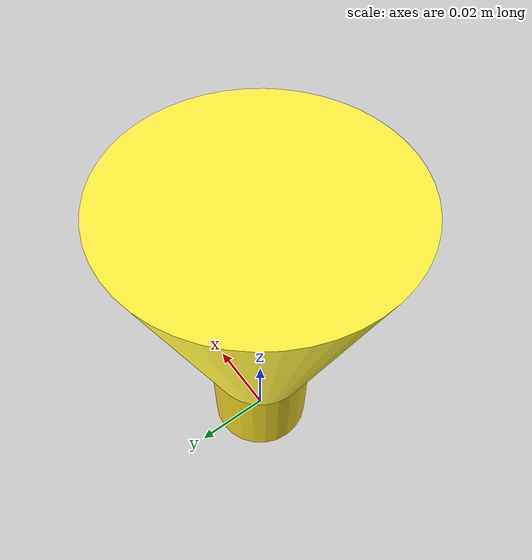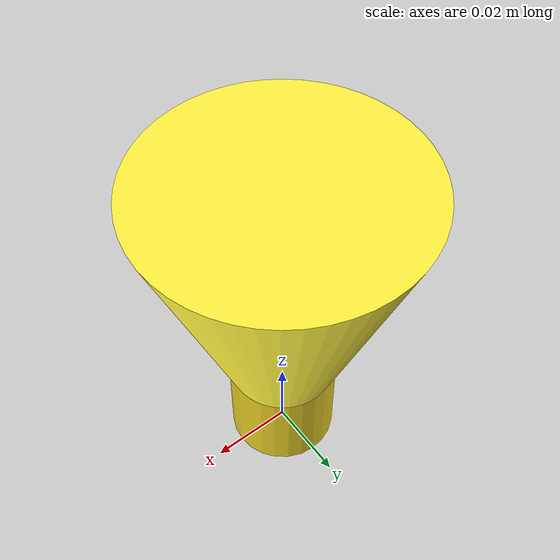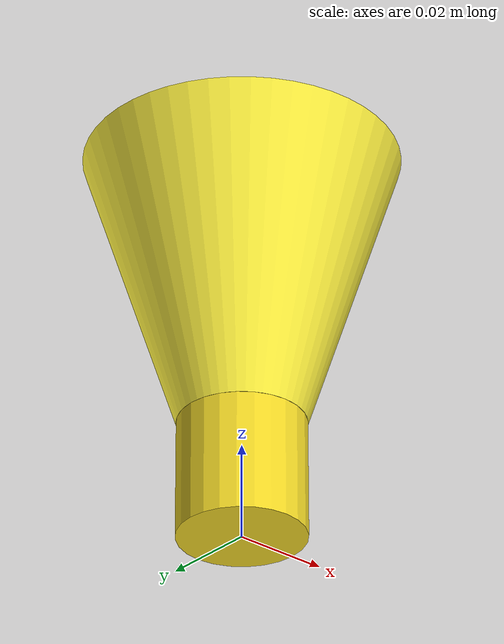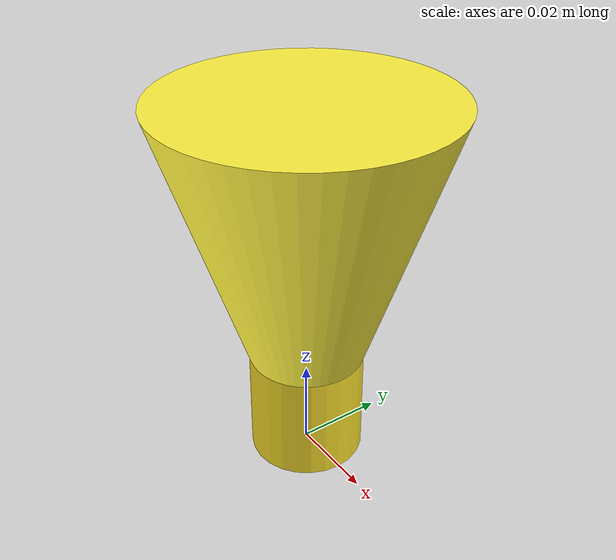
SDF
<?xml version="1.0" ?>
<sdf version="1.9">
  <model name="shuttlecock">
    <pose>0 0 0 0 0 0</pose>
    <link name="body">
      <inertial>
        <pose>0 0 0.022 0 0 0</pose>
        <mass>0.005</mass>
        <inertia>
          <ixx>4.33e-6</ixx>
          <ixy>0</ixy>
          <ixz>0</ixz>
          <iyy>4.33e-6</iyy>
          <iyz>0</iyz>
          <izz>2.64e-6</izz>
        </inertia>
      </inertial>

      <collision name="cork">
        <pose>0 0 0.0125 0 0 0</pose>
        <geometry>
          <cylinder><radius>0.013</radius><length>0.025</length></cylinder>
        </geometry>
        <surface>
          <friction><ode><mu>0.9</mu><mu2>0.9</mu2></ode></friction>
          <bounce><restitution_coefficient>0.1</restitution_coefficient></bounce>
        </surface>
      </collision>
      <visual name="cork_visual">
        <pose>0 0 0.0125 0 0 0</pose>
        <geometry>
          <cylinder><radius>0.013</radius><length>0.025</length></cylinder>
        </geometry>
        <material>
          <ambient>0.75 0.68 0.15 1</ambient>
          <diffuse>0.95 0.85 0.15 1</diffuse>
        </material>
      </visual>

      <!-- conical feather skirt, z = 0.025 .. 0.085 -->
      <collision name="skirt">
        <pose>0 0 0.025 0 0 0</pose>
        <geometry>
          <mesh><uri>model://shuttlecock/meshes/skirt.stl</uri></mesh>
        </geometry>
        <surface>
          <friction><ode><mu>0.9</mu><mu2>0.9</mu2></ode></friction>
        </surface>
      </collision>
      <visual name="skirt_visual">
        <pose>0 0 0.025 0 0 0</pose>
        <geometry>
          <mesh><uri>model://shuttlecock/meshes/skirt.stl</uri></mesh>
        </geometry>
        <material>
          <ambient>0.80 0.75 0.20 1</ambient>
          <diffuse>1.0 0.95 0.25 1</diffuse>
        </material>
      </visual>

      <!-- A perfect primitive on a flat plane never stops without rolling
           resistance, so damp it and let it settle where it is placed. -->
      <velocity_decay>
        <linear>0.6</linear>
        <angular>1.2</angular>
      </velocity_decay>
    </link>
  </model>
</sdf>
